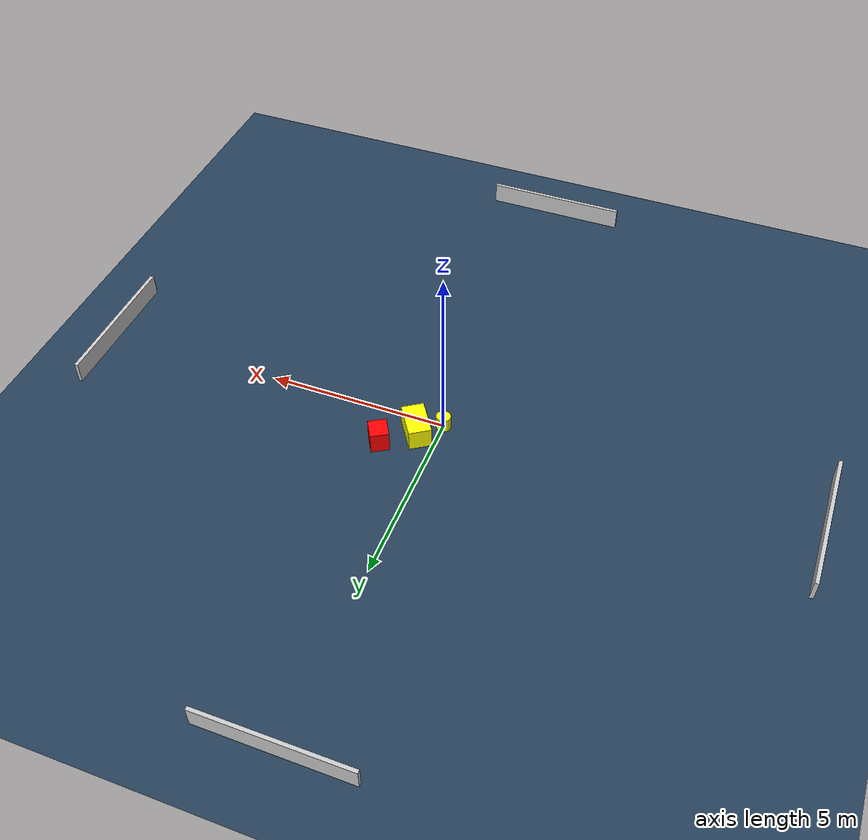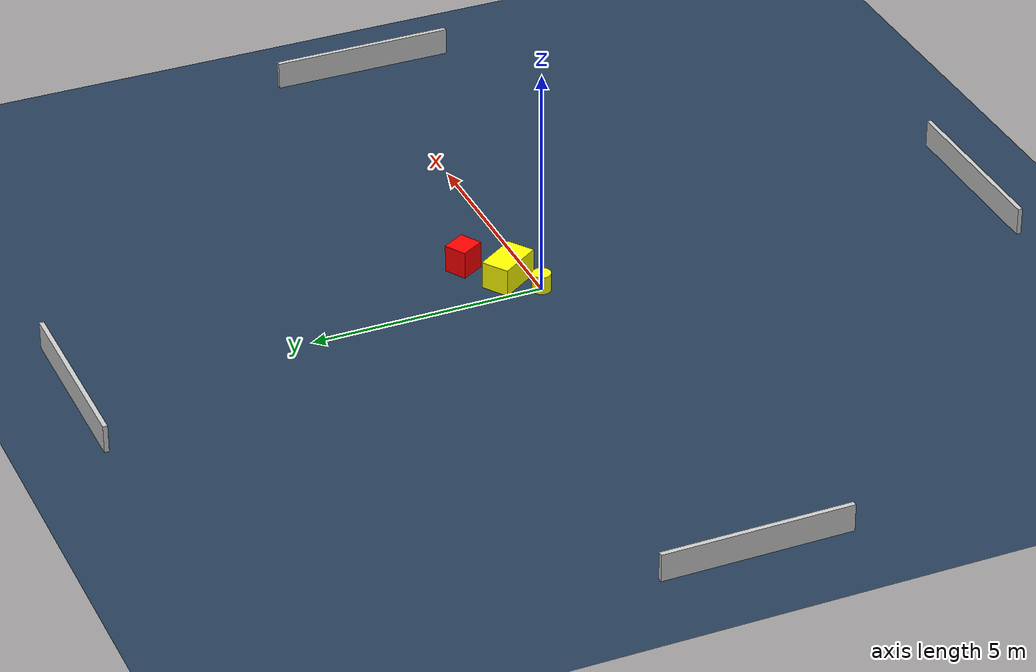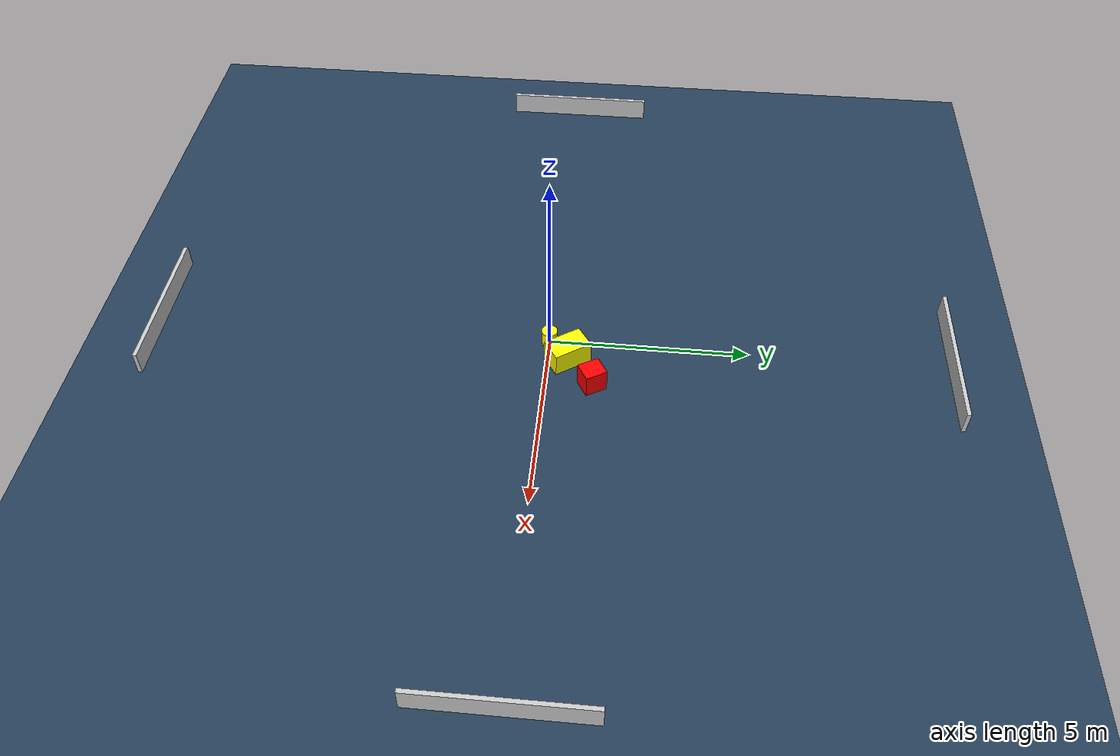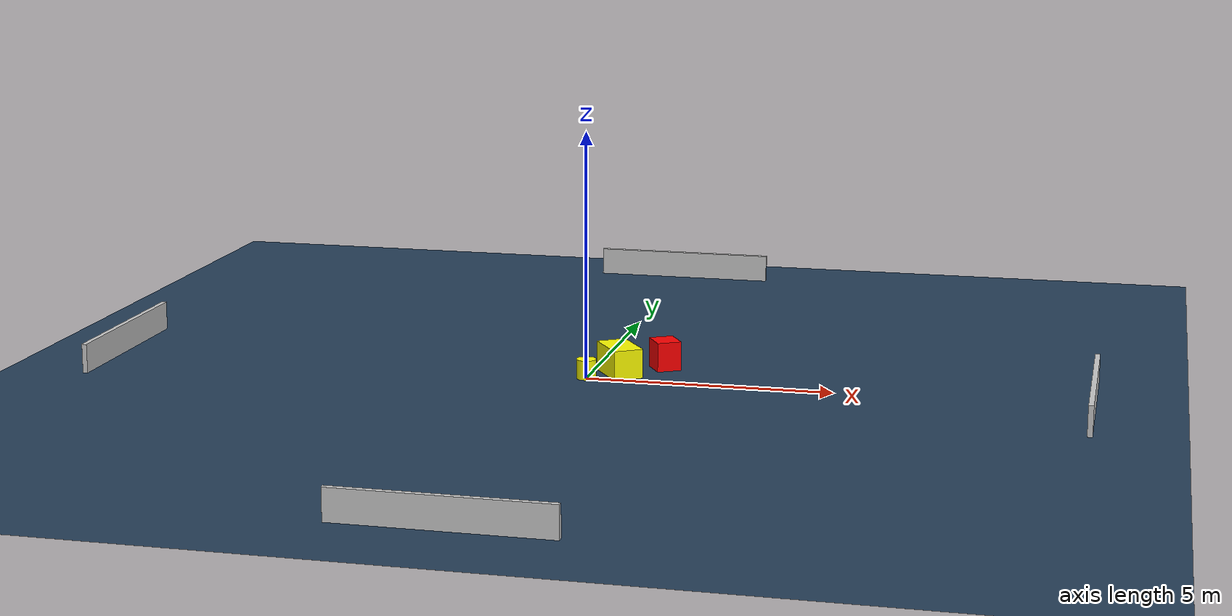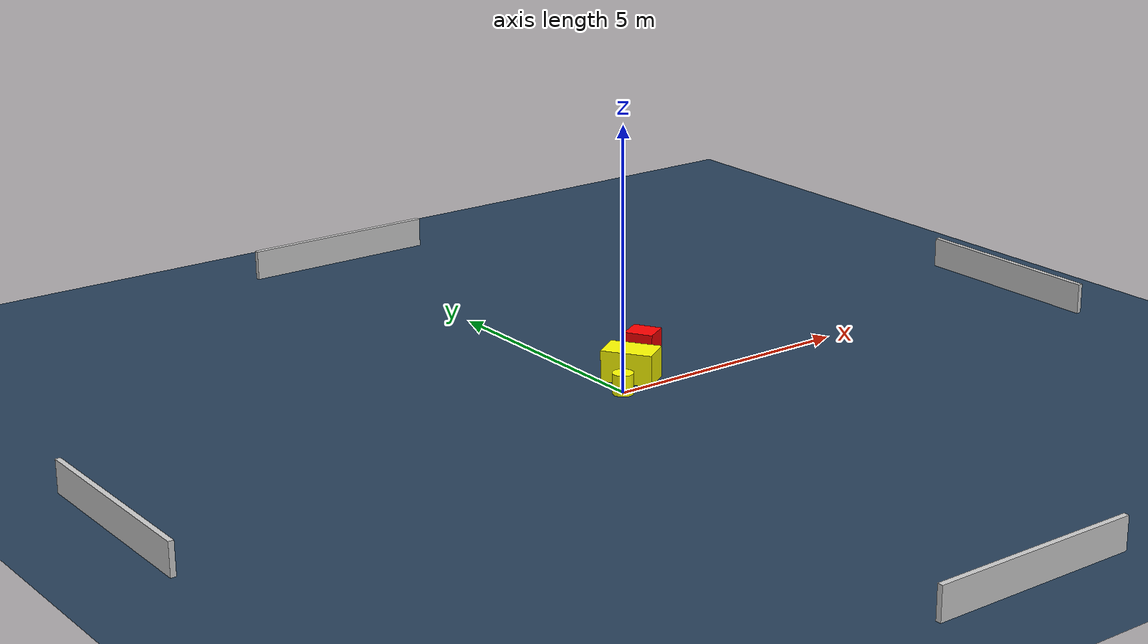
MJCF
<?xml version="1.0" ?>
<mujoco model="generated_environment">
  <option timestep="0.01" integrator="RK4" cone="elliptic"/>
  <default>
    <geom density="1"/>
  </default>
  <asset>
    <texture builtin="gradient" height="3072" name="skybox" rgb1="0.3 0.5 0.7" rgb2="0 0 0" type="skybox" width="512"/>
    <texture builtin="checker" height="300" name="groundplane" rgb1="0.2 0.3 0.4" rgb2="0.1 0.2 0.3" type="2d" width="300"/>
    <material name="groundplane" reflectance="0.2" texrepeat="5 5" texture="groundplane"/>
  </asset>
  <worldbody>
    <light dir="0 0 -1" directional="true" pos="0 0 1.5"/>
    <geom condim="3" friction="0.5 0.005 0.001" material="groundplane" name="floor" pos="0 0 0" size="0 0 0.05" type="plane"/>
    <body name="walls">
      <geom name="wall_1" condim="4" pos="-10.0 0.0 0.3" rgba="0.800000011920929 0.800000011920929 0.800000011920929 1.0" size="0.05 2.0 0.3" type="box"/>
      <geom name="wall_2" condim="4" pos="10.0 0.0 0.3" rgba="0.800000011920929 0.800000011920929 0.800000011920929 1.0" size="0.05 2.0 0.3" type="box"/>
      <geom name="wall_3" condim="4" pos="0.0 -10.0 0.3" rgba="0.800000011920929 0.800000011920929 0.800000011920929 1.0" size="2.0 0.05 0.3" type="box"/>
      <geom name="wall_4" condim="4" pos="0.0 10.0 0.3" rgba="0.800000011920929 0.800000011920929 0.800000011920929 1.0" size="2.0 0.05 0.3" type="box"/>
    </body>
    <body name="robot">
      <joint name="joint_x" type="slide" pos="0 0 0" axis="1 0 0"/>
      <joint name="joint_y" type="slide" pos="0 0 0" axis="0 1 0"/>
      <geom name="robot" type="cylinder" pos="0.0 0.0 0.2" size="0.2 0.2 0.0" mass="5.0" friction="1.0 0.005 0.0001" condim="4" rgba="1.0 1.0 0.0 1.0"/>
    </body>
    <body name="obstacle_1_movable">
      <geom name="obstacle_1_movable" condim="4" pos="0.5734932340976187 0.5018803159905135 0.3" euler="0 0 123.90815366529269" friction="0.0 0.005 0.001" rgba="1.0 1.0 0.0 1.0" size="0.49433325205121165 0.30809229379265135 0.3" type="box" mass="0.1"/>
      <joint type="free"/>
    </body>
    <body name="obstacle_2_static">
      <geom name="obstacle_2_static" condim="4" pos="1.3712187258305442 1.1651099538095089 0.3" euler="0 0 120.35292826444963" friction="0.0 0.005 0.001" rgba="1.0 0.0 0.0 1.0" size="0.2775735786502267 0.2518214194424669 0.3" type="box"/>
    </body>
  </worldbody>
  <actuator>
    <motor name="actuator_x" joint="joint_x" gear="1" ctrlrange="-1 1"/>
    <motor name="actuator_y" joint="joint_y" gear="1" ctrlrange="-1 1"/>
  </actuator>
</mujoco>
